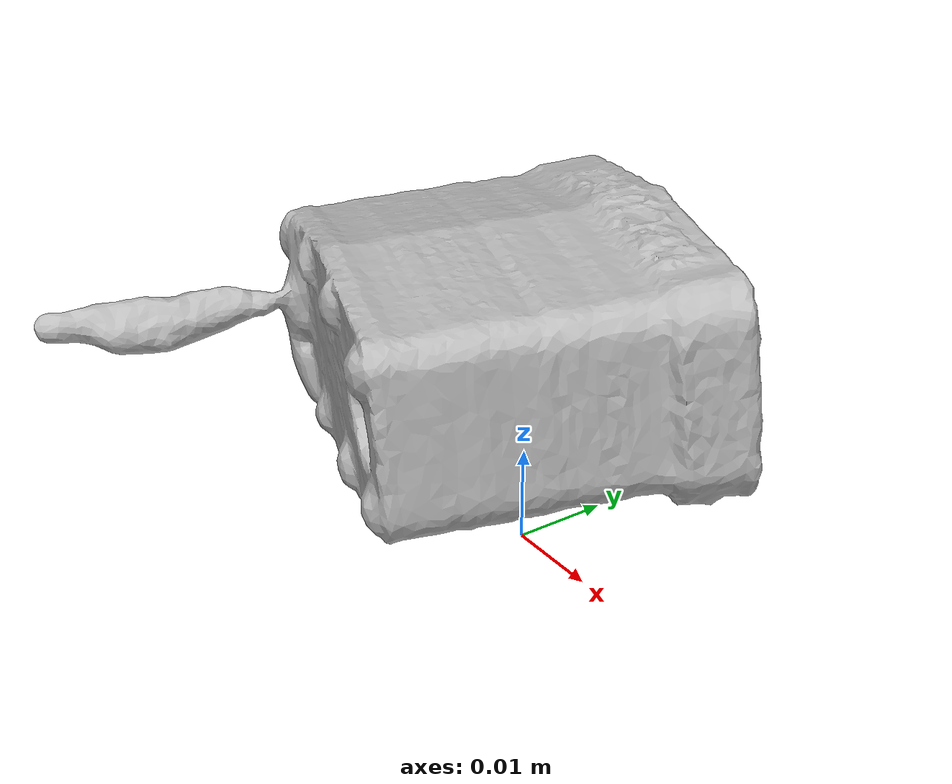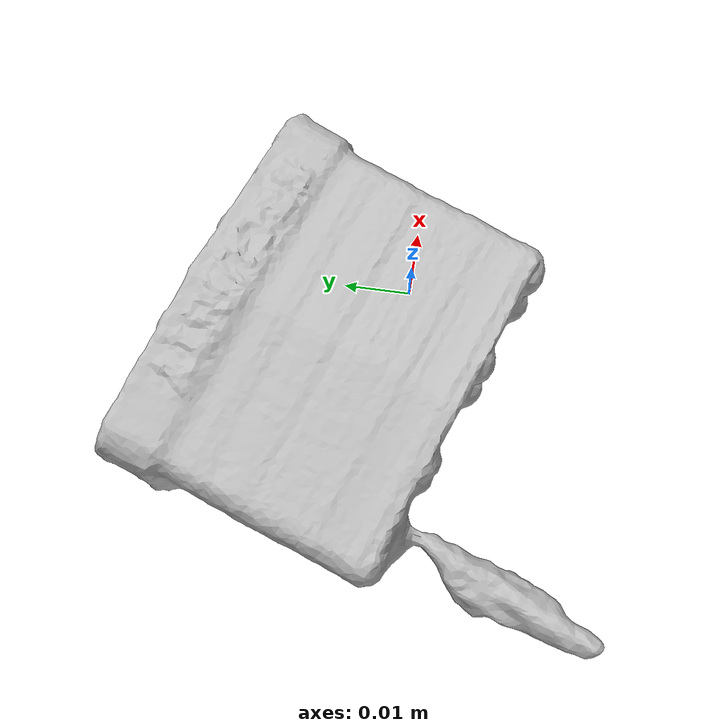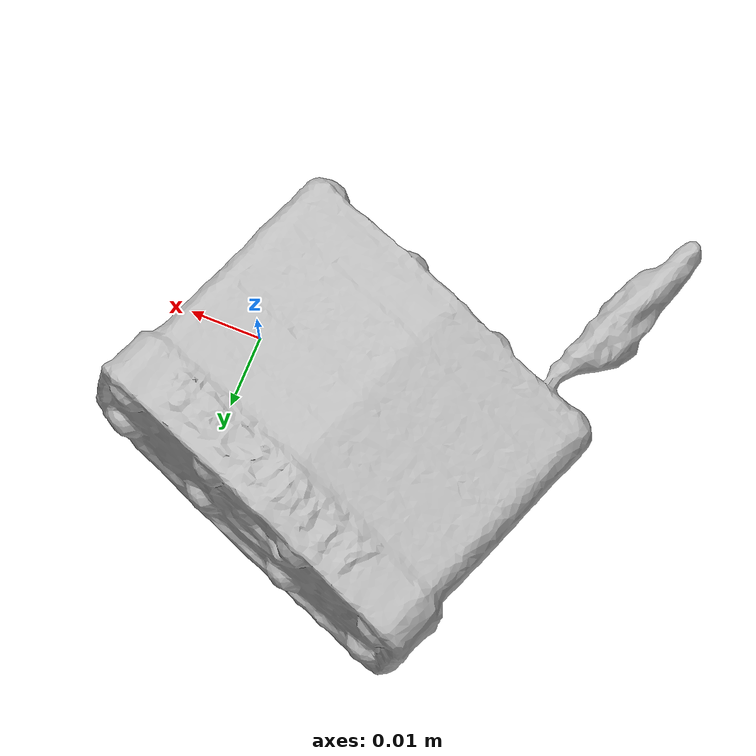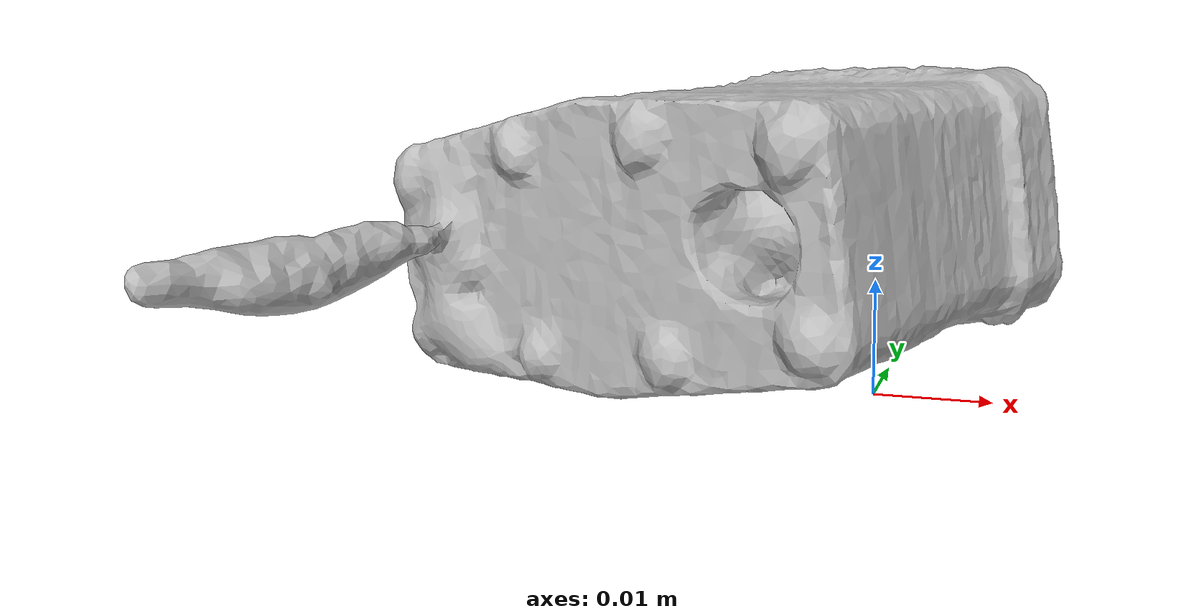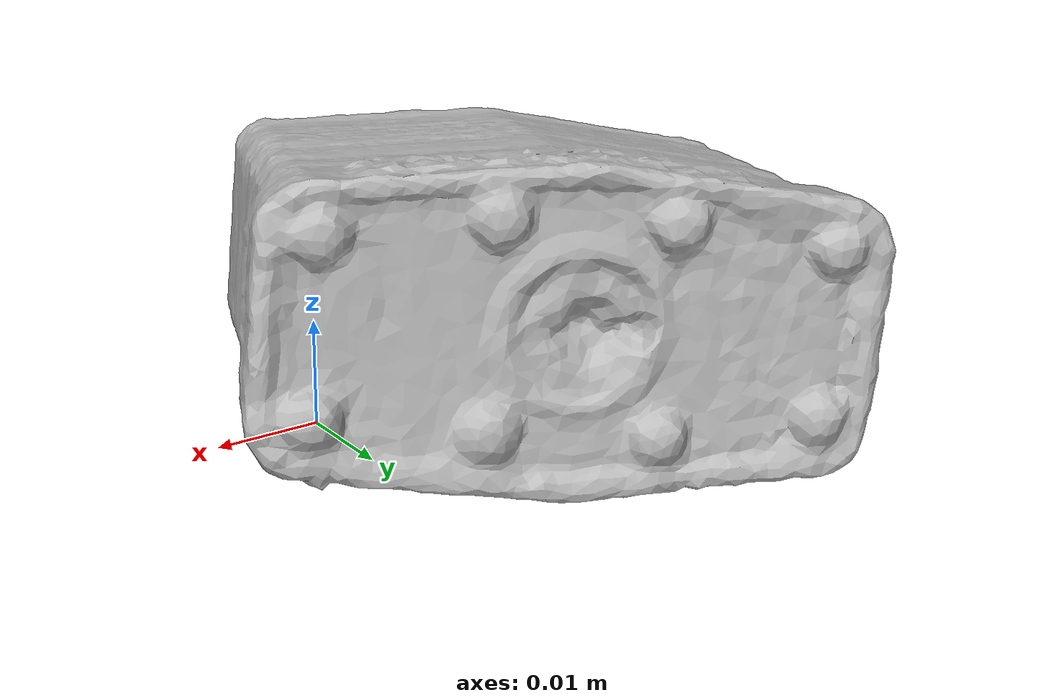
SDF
<?xml version='1.0'?>
<sdf version="1.4">
  <model name="padlock">
    <static>false</static>
    <link name="link">
      <inertial>
        <pose>-0.01707606691752894 0.009517389002211323 0.013626341524550547 2.927745012705907 -1.4645624142657327 -3.127383472304371</pose>
        <mass>4.57020034268325e-05</mass>
        <inertia>
          <ixx>1.548488478544847e-08</ixx>
          <ixy>3.686949259276433e-24</ixy>
          <ixz>7.334040623284196e-26</ixz>
          <iyy>1.1426254423194736e-08</iyy>
          <iyz>4.745004221988278e-25</iyz>
          <izz>8.409682265277147e-09</izz>
        </inertia>
      </inertial>
      <collision name="collision">
        <geometry>
          <mesh>
            <!-- Use a downsampled mesh for collisions -->
            <uri>model://038_padlock/google_16k/038_padlock.obj</uri>
            </mesh>
        </geometry>
        <surface>
          <friction>
            <ode>
              <mu>0.9</mu>
              <mu2>0.9</mu2>
            </ode>
          </friction>
          <contact>
            <ode>
              <kp>1000000000000.0</kp>
              <kd>1</kd>
              <min_depth>0.0001</min_depth>
              <max_vel>0.01</max_vel>
            </ode>
          </contact>
          <bounce>
            <restitution_coefficient>0.1</restitution_coefficient>
            <threshold>1000.0</threshold>
          </bounce>
        </surface>
      </collision>
      <visual name="visual">
        <geometry>
          <mesh>
            <uri>model://038_padlock/google_16k/038_padlock.dae</uri>
            </mesh>
        </geometry>
      </visual>
    </link>
  </model>
</sdf>
